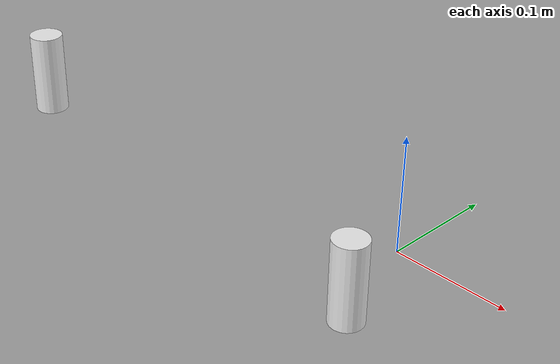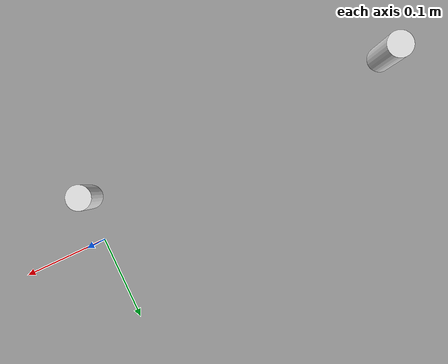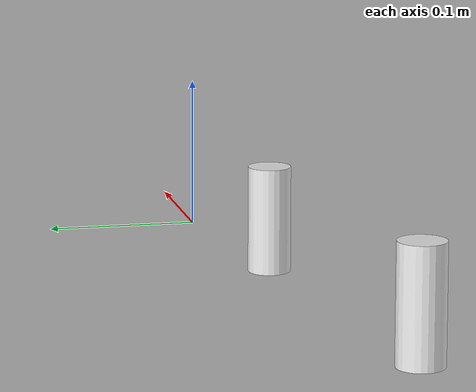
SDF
<?xml version='1.0'?>
<sdf version='1.6'>
  <model name='simple_chess_set'>
    <link name='link'>

<!-- Queens -->
      <inertial>
        <mass>0.033</mass>
        <inertia>
          <ixx>2.289e-05</ixx>
          <ixy>0</ixy>
          <ixz>0</ixz>
          <iyy>2.289e-05</iyy>
          <iyz>0</iyz>
          <izz>1.485e-05</izz>
        </inertia>
        <pose frame=''>-0.1925 -0.0275 0 0 -0 0</pose>
      </inertial>
      <pose frame=''>-0.1925 -0.0275 0 0 -0 0</pose>
      <gravity>1</gravity>
      <self_collide>0</self_collide>
      <kinematic>0</kinematic>
      <enable_wind>0</enable_wind>
      <visual name='visual'>
        <pose frame=''>-0.1925 -0.0275 0.0375 0 -0 0</pose>
        <geometry>
          <cylinder>
            <radius>0.015</radius>
            <length>0.075</length>
          </cylinder>
        </geometry>
        <material>
          <lighting>1</lighting>
          <script>
            <uri>file://media/materials/scripts/gazebo.material</uri>
            <name>Gazebo/White</name>
          </script>
          <shader type='vertex'>
            <normal_map>__default__</normal_map>
          </shader>
          <ambient>1 1 1 1</ambient>
          <diffuse>1 1 1 1</diffuse>
          <specular>1 1 1 1</specular>
          <emissive>0 0 0 1</emissive>
        </material>
        <transparency>0</transparency>
        <cast_shadows>1</cast_shadows>
      </visual>
      <collision name='collision'>
        <laser_retro>0</laser_retro>
        <max_contacts>10</max_contacts>
        <pose frame=''>-0.1925 -0.0275 0 0 -0 0</pose>
        <geometry>
          <cylinder>
            <radius>0.015</radius>
            <length>0.075</length>
          </cylinder>
        </geometry>
        <surface>
          <friction>
            <ode>
              <mu>1</mu>
              <mu2>1</mu2>
              <fdir1>0 0 0</fdir1>
              <slip1>0</slip1>
              <slip2>0</slip2>
            </ode>
            <torsional>
              <coefficient>1</coefficient>
              <patch_radius>0</patch_radius>
              <surface_radius>0</surface_radius>
              <use_patch_radius>1</use_patch_radius>
              <ode>
                <slip>0</slip>
              </ode>
            </torsional>
          </friction>
          <bounce>
            <restitution_coefficient>0</restitution_coefficient>
            <threshold>1e+06</threshold>
          </bounce>
          <contact>
            <collide_without_contact>0</collide_without_contact>
            <collide_without_contact_bitmask>1</collide_without_contact_bitmask>
            <collide_bitmask>1</collide_bitmask>
            <ode>
              <soft_cfm>0</soft_cfm>
              <soft_erp>0.2</soft_erp>
              <kp>1e+13</kp>
              <kd>1</kd>
              <max_vel>0.01</max_vel>
              <min_depth>0</min_depth>
            </ode>
            <bullet>
              <split_impulse>1</split_impulse>
              <split_impulse_penetration_threshold>-0.01</split_impulse_penetration_threshold>
              <soft_cfm>0</soft_cfm>
              <soft_erp>0.2</soft_erp>
              <kp>1e+13</kp>
              <kd>1</kd>
            </bullet>
          </contact>
        </surface>
      </collision>

      <inertial>
        <mass>0.033</mass>
        <inertia>
          <ixx>2.289e-05</ixx>
          <ixy>0</ixy>
          <ixz>0</ixz>
          <iyy>2.289e-05</iyy>
          <iyz>0</iyz>
          <izz>1.485e-05</izz>
        </inertia>
        <pose frame=''>0.1925 -0.0275 0 0 -0 0</pose>
      </inertial>
      <pose frame=''>0.1925 -0.0275 0 0 -0 0</pose>
      <gravity>1</gravity>
      <self_collide>0</self_collide>
      <kinematic>0</kinematic>
      <enable_wind>0</enable_wind>
      <visual name='visual'>
        <pose frame=''>0.1925 -0.0275 0 0 -0 0</pose>
        <geometry>
          <cylinder>
            <radius>0.015</radius>
            <length>0.075</length>
          </cylinder>
        </geometry>
        <material>
          <lighting>1</lighting>
          <script>
            <uri>file://media/materials/scripts/gazebo.material</uri>
            <name>Gazebo/White</name>
          </script>
          <shader type='vertex'>
            <normal_map>__default__</normal_map>
          </shader>
          <ambient>0 0 0 1</ambient>
          <diffuse>0 0 0 1</diffuse>
          <specular>0 0 0 1</specular>
          <emissive>0 0 0 1</emissive>
        </material>
        <transparency>0</transparency>
        <cast_shadows>1</cast_shadows>
      </visual>
      <collision name='collision'>
        <laser_retro>0</laser_retro>
        <max_contacts>10</max_contacts>
        <pose frame=''>0.1925 -0.0275 0 0 -0 0</pose>
        <geometry>
          <cylinder>
            <radius>0.015</radius>
            <length>0.075</length>
          </cylinder>
        </geometry>
        <surface>
          <friction>
            <ode>
              <mu>1</mu>
              <mu2>1</mu2>
              <fdir1>0 0 0</fdir1>
              <slip1>0</slip1>
              <slip2>0</slip2>
            </ode>
            <torsional>
              <coefficient>1</coefficient>
              <patch_radius>0</patch_radius>
              <surface_radius>0</surface_radius>
              <use_patch_radius>1</use_patch_radius>
              <ode>
                <slip>0</slip>
              </ode>
            </torsional>
          </friction>
          <bounce>
            <restitution_coefficient>0</restitution_coefficient>
            <threshold>1e+06</threshold>
          </bounce>
          <contact>
            <collide_without_contact>0</collide_without_contact>
            <collide_without_contact_bitmask>1</collide_without_contact_bitmask>
            <collide_bitmask>1</collide_bitmask>
            <ode>
              <soft_cfm>0</soft_cfm>
              <soft_erp>0.2</soft_erp>
              <kp>1e+13</kp>
              <kd>1</kd>
              <max_vel>0.01</max_vel>
              <min_depth>0</min_depth>
            </ode>
            <bullet>
              <split_impulse>1</split_impulse>
              <split_impulse_penetration_threshold>-0.01</split_impulse_penetration_threshold>
              <soft_cfm>0</soft_cfm>
              <soft_erp>0.2</soft_erp>
              <kp>1e+13</kp>
              <kd>1</kd>
            </bullet>
          </contact>
        </surface>
      </collision>
    </link>
    <static>0</static>
    <allow_auto_disable>1</allow_auto_disable>

  </model>
</sdf>
